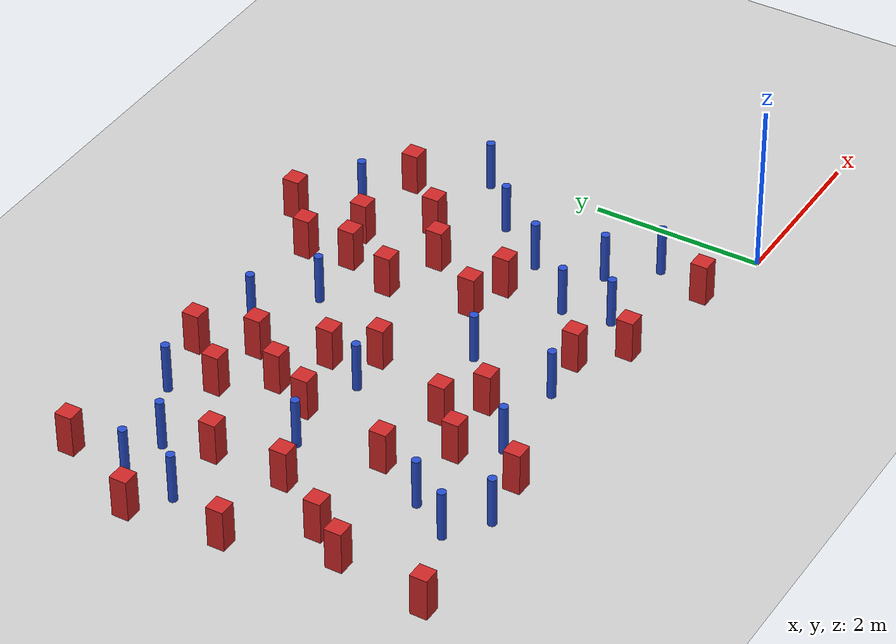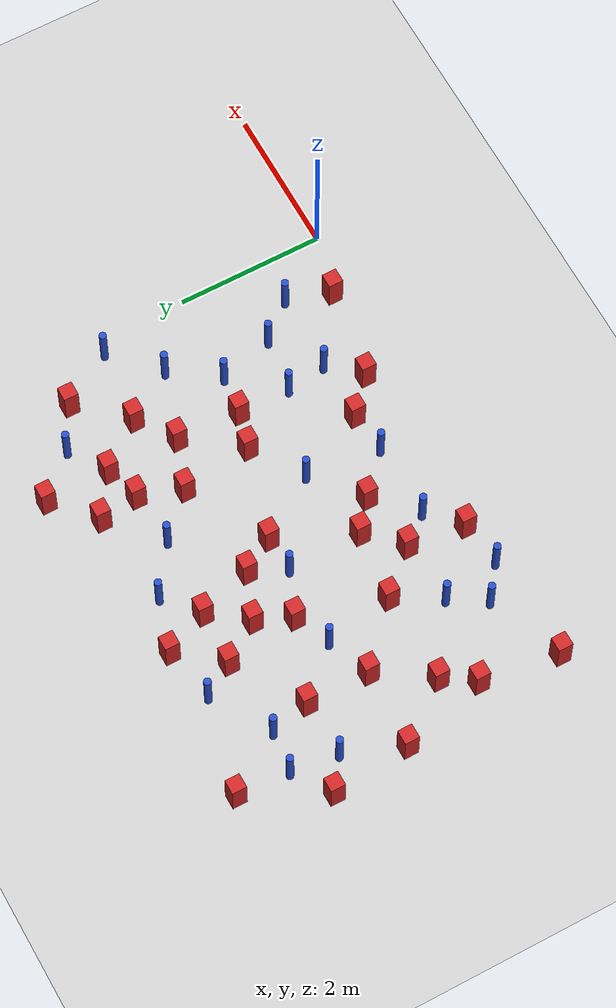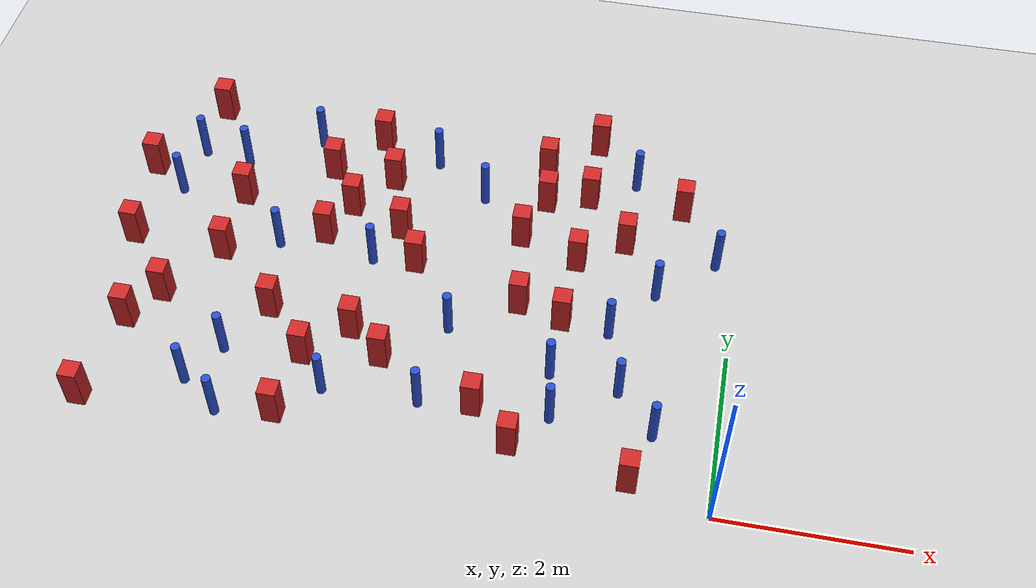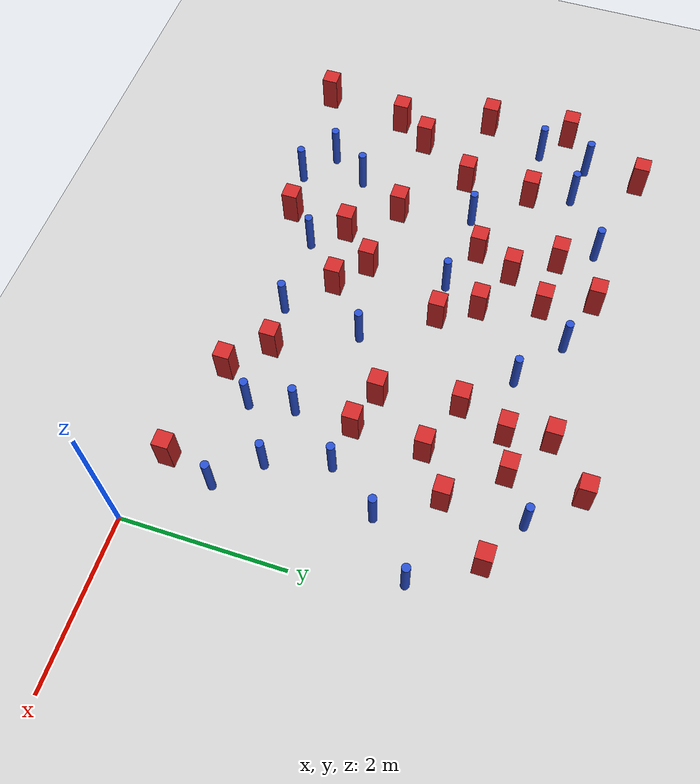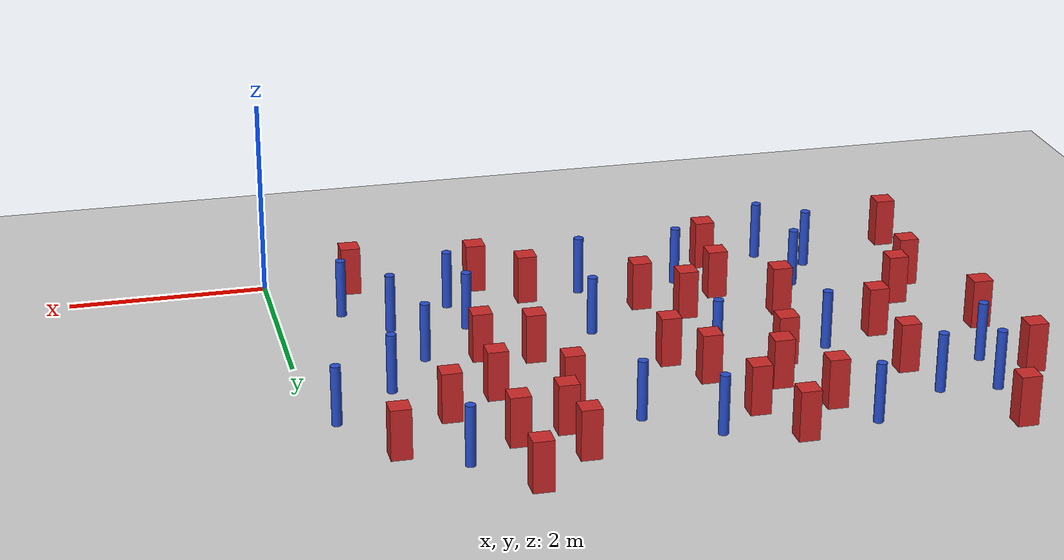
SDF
<sdf version="1.6">
 <world name="default">
  <model name="ground_plane">
   <static>1</static>
   <link name="link">
    <collision name="collision">
     <geometry><plane><normal>0 0 1</normal><size>100 100</size></plane></geometry>
     <surface><friction><ode><mu>100</mu><mu2>50</mu2></ode></friction></surface>
    </collision>
    <visual name="visual">
     <cast_shadows>0</cast_shadows>
     <geometry><plane><normal>0 0 1</normal><size>100 100</size></plane></geometry>
     <material>
      <ambient>1.0 1.0 1.0 1.0</ambient>
      <diffuse>0.8 0.8 0.8 1.0</diffuse>
      <specular>0.01 0.01 0.01 1.000000</specular>
     </material>
    </visual>
   </link>
  </model>
  <model name="pole_obstacle3">
   <static>true</static>
   <pose>-1.08976365134 1.31556032206 2.88873142074e-08 -9.90536689672e-09 4.60219948993e-07 -1.20965994959e-07</pose>
   <link name="link">
    <pose>0 0 0.3 0 -0 0</pose>
    <inertial>
     <mass>1</mass>
     <inertia><ixx>0.145833</ixx><ixy>0</ixy><ixz>0</ixz><iyy>0.145833</iyy><iyz>0</iyz><izz>0.125</izz></inertia>
    </inertial>
    <collision name="collision">
     <geometry><cylinder><radius>0.05</radius><length>.6</length></cylinder></geometry>
    </collision>
    <visual name="visual">
     <geometry><cylinder><radius>0.05</radius><length>.6</length></cylinder></geometry>
     <material>
      <script><name>Gazebo/Blue</name><uri>file://media/materials/scripts/gazebo.material</uri></script>
     </material>
    </visual>
   </link>
  </model>
  <model name="square_post_obstacle5">
   <static>true</static>
   <pose>-2.57601533757 0.859786683411 8.22691968438e-08 7.2212513382e-06 -7.54495500217e-07 2.29674213826e-05</pose>
   <link name="link">
    <pose>0 0 0.25 0 -0 0</pose>
    <inertial>
     <mass>100</mass>
     <inertia>
      <ixx>0.166667</ixx>
      <ixy>0</ixy>
      <ixz>0</ixz>
      <iyy>0.166667</iyy>
      <iyz>0</iyz>
      <izz>0.166667</izz>
     </inertia>
    </inertial>
    <collision name="collision"><geometry><box><size>.2 .2 .5</size></box></geometry></collision>
    <visual name="visual">
     <geometry><box><size>.2 .2 .5</size></box></geometry>
     <material>
      <script><name>Gazebo/Red</name><uri>file://media/materials/scripts/gazebo.material</uri></script>
     </material>
    </visual>
   </link>
  </model>
  <model name="pole_obstacle4">
   <static>true</static>
   <pose>-3.15151144274 0.806409294875 2.88873142074e-08 -9.90536689285e-09 4.60219949002e-07 -1.20965994953e-07</pose>
   <link name="link">
    <pose>0 0 0.3 0 -0 0</pose>
    <inertial>
     <mass>1</mass>
     <inertia><ixx>0.145833</ixx><ixy>0</ixy><ixz>0</ixz><iyy>0.145833</iyy><iyz>0</iyz><izz>0.125</izz></inertia>
    </inertial>
    <collision name="collision">
     <geometry><cylinder><radius>0.05</radius><length>.6</length></cylinder></geometry>
    </collision>
    <visual name="visual">
     <geometry><cylinder><radius>0.05</radius><length>.6</length></cylinder></geometry>
     <material>
      <script><name>Gazebo/Blue</name><uri>file://media/materials/scripts/gazebo.material</uri></script>
     </material>
    </visual>
   </link>
  </model>
  <model name="pole_obstacle6">
   <static>true</static>
   <pose>-5.11219012567 4.33190283015 2.88873142074e-08 -9.90536690842e-09 4.60219948965e-07 -1.20965994976e-07</pose>
   <link name="link">
    <pose>0 0 0.3 0 -0 0</pose>
    <inertial>
     <mass>1</mass>
     <inertia><ixx>0.145833</ixx><ixy>0</ixy><ixz>0</ixz><iyy>0.145833</iyy><iyz>0</iyz><izz>0.125</izz></inertia>
    </inertial>
    <collision name="collision">
     <geometry><cylinder><radius>0.05</radius><length>.6</length></cylinder></geometry>
    </collision>
    <visual name="visual">
     <geometry><cylinder><radius>0.05</radius><length>.6</length></cylinder></geometry>
     <material>
      <script><name>Gazebo/Blue</name><uri>file://media/materials/scripts/gazebo.material</uri></script>
     </material>
    </visual>
   </link>
  </model>
  <model name="square_post_obstacle11">
   <static>true</static>
   <pose>-4.8404946907 3.89938742409 8.22691968438e-08 7.2212513382e-06 -7.54495500217e-07 2.29674213826e-05</pose>
   <link name="link">
    <pose>0 0 0.25 0 -0 0</pose>
    <inertial>
     <mass>100</mass>
     <inertia>
      <ixx>0.166667</ixx>
      <ixy>0</ixy>
      <ixz>0</ixz>
      <iyy>0.166667</iyy>
      <iyz>0</iyz>
      <izz>0.166667</izz>
     </inertia>
    </inertial>
    <collision name="collision"><geometry><box><size>.2 .2 .5</size></box></geometry></collision>
    <visual name="visual">
     <geometry><box><size>.2 .2 .5</size></box></geometry>
     <material>
      <script><name>Gazebo/Red</name><uri>file://media/materials/scripts/gazebo.material</uri></script>
     </material>
    </visual>
   </link>
  </model>
  <model name="square_post_obstacle13">
   <static>true</static>
   <pose>-1.27762852433 3.37003128828 8.22691968438e-08 7.2212513382e-06 -7.54495500217e-07 2.29674213826e-05</pose>
   <link name="link">
    <pose>0 0 0.25 0 -0 0</pose>
    <inertial>
     <mass>100</mass>
     <inertia>
      <ixx>0.166667</ixx>
      <ixy>0</ixy>
      <ixz>0</ixz>
      <iyy>0.166667</iyy>
      <iyz>0</iyz>
      <izz>0.166667</izz>
     </inertia>
    </inertial>
    <collision name="collision"><geometry><box><size>.2 .2 .5</size></box></geometry></collision>
    <visual name="visual">
     <geometry><box><size>.2 .2 .5</size></box></geometry>
     <material>
      <script><name>Gazebo/Red</name><uri>file://media/materials/scripts/gazebo.material</uri></script>
     </material>
    </visual>
   </link>
  </model>
  <model name="square_post_obstacle22">
   <static>true</static>
   <pose>-0.85530971246 0.242384981534 8.22691968438e-08 7.2212513382e-06 -7.54495500217e-07 2.29674213826e-05</pose>
   <link name="link">
    <pose>0 0 0.25 0 -0 0</pose>
    <inertial>
     <mass>100</mass>
     <inertia>
      <ixx>0.166667</ixx>
      <ixy>0</ixy>
      <ixz>0</ixz>
      <iyy>0.166667</iyy>
      <iyz>0</iyz>
      <izz>0.166667</izz>
     </inertia>
    </inertial>
    <collision name="collision"><geometry><box><size>.2 .2 .5</size></box></geometry></collision>
    <visual name="visual">
     <geometry><box><size>.2 .2 .5</size></box></geometry>
     <material>
      <script><name>Gazebo/Red</name><uri>file://media/materials/scripts/gazebo.material</uri></script>
     </material>
    </visual>
   </link>
  </model>
  <model name="square_post_obstacle28">
   <static>true</static>
   <pose>-3.85327002923 3.11422200383 8.22691968438e-08 7.2212513382e-06 -7.54495500217e-07 2.29674213826e-05</pose>
   <link name="link">
    <pose>0 0 0.25 0 -0 0</pose>
    <inertial>
     <mass>100</mass>
     <inertia>
      <ixx>0.166667</ixx>
      <ixy>0</ixy>
      <ixz>0</ixz>
      <iyy>0.166667</iyy>
      <iyz>0</iyz>
      <izz>0.166667</izz>
     </inertia>
    </inertial>
    <collision name="collision"><geometry><box><size>.2 .2 .5</size></box></geometry></collision>
    <visual name="visual">
     <geometry><box><size>.2 .2 .5</size></box></geometry>
     <material>
      <script><name>Gazebo/Red</name><uri>file://media/materials/scripts/gazebo.material</uri></script>
     </material>
    </visual>
   </link>
  </model>
  <model name="square_post_obstacle30">
   <static>true</static>
   <pose>-2.3392157579 4.38237892554 8.22691968438e-08 7.2212513382e-06 -7.54495500217e-07 2.29674213826e-05</pose>
   <link name="link">
    <pose>0 0 0.25 0 -0 0</pose>
    <inertial>
     <mass>100</mass>
     <inertia>
      <ixx>0.166667</ixx>
      <ixy>0</ixy>
      <ixz>0</ixz>
      <iyy>0.166667</iyy>
      <iyz>0</iyz>
      <izz>0.166667</izz>
     </inertia>
    </inertial>
    <collision name="collision"><geometry><box><size>.2 .2 .5</size></box></geometry></collision>
    <visual name="visual">
     <geometry><box><size>.2 .2 .5</size></box></geometry>
     <material>
      <script><name>Gazebo/Red</name><uri>file://media/materials/scripts/gazebo.material</uri></script>
     </material>
    </visual>
   </link>
  </model>
  <model name="square_post_obstacle35">
   <static>true</static>
   <pose>-4.60704006461 0.393187467713 8.22691968438e-08 7.22125133819e-06 -7.54495500217e-07 2.29674213826e-05</pose>
   <link name="link">
    <pose>0 0 0.25 0 -0 0</pose>
    <inertial>
     <mass>100</mass>
     <inertia>
      <ixx>0.166667</ixx>
      <ixy>0</ixy>
      <ixz>0</ixz>
      <iyy>0.166667</iyy>
      <iyz>0</iyz>
      <izz>0.166667</izz>
     </inertia>
    </inertial>
    <collision name="collision"><geometry><box><size>.2 .2 .5</size></box></geometry></collision>
    <visual name="visual">
     <geometry><box><size>.2 .2 .5</size></box></geometry>
     <material>
      <script><name>Gazebo/Red</name><uri>file://media/materials/scripts/gazebo.material</uri></script>
     </material>
    </visual>
   </link>
  </model>
  <model name="square_post_obstacle36">
   <static>true</static>
   <pose>-5.7768450502 3.30718162013 8.22691968438e-08 7.2212513382e-06 -7.54495500217e-07 2.29674213826e-05</pose>
   <link name="link">
    <pose>0 0 0.25 0 -0 0</pose>
    <inertial>
     <mass>100</mass>
     <inertia>
      <ixx>0.166667</ixx>
      <ixy>0</ixy>
      <ixz>0</ixz>
      <iyy>0.166667</iyy>
      <iyz>0</iyz>
      <izz>0.166667</izz>
     </inertia>
    </inertial>
    <collision name="collision"><geometry><box><size>.2 .2 .5</size></box></geometry></collision>
    <visual name="visual">
     <geometry><box><size>.2 .2 .5</size></box></geometry>
     <material>
      <script><name>Gazebo/Red</name><uri>file://media/materials/scripts/gazebo.material</uri></script>
     </material>
    </visual>
   </link>
  </model>
  <model name="pole_obstacle41">
   <static>true</static>
   <pose>-3.03364688994 1.82328135514 2.88873142074e-08 -9.90536689395e-09 4.60219949e-07 -1.20965994953e-07</pose>
   <link name="link">
    <pose>0 0 0.3 0 -0 0</pose>
    <inertial>
     <mass>1</mass>
     <inertia><ixx>0.145833</ixx><ixy>0</ixy><ixz>0</ixz><iyy>0.145833</iyy><iyz>0</iyz><izz>0.125</izz></inertia>
    </inertial>
    <collision name="collision">
     <geometry><cylinder><radius>0.05</radius><length>.6</length></cylinder></geometry>
    </collision>
    <visual name="visual">
     <geometry><cylinder><radius>0.05</radius><length>.6</length></cylinder></geometry>
     <material>
      <script><name>Gazebo/Blue</name><uri>file://media/materials/scripts/gazebo.material</uri></script>
     </material>
    </visual>
   </link>
  </model>
  <model name="pole_obstacle42">
   <static>true</static>
   <pose>-1.84109518254 1.42156812608 2.88873142074e-08 -9.90536689672e-09 4.60219948993e-07 -1.20965994959e-07</pose>
   <link name="link">
    <pose>0 0 0.3 0 -0 0</pose>
    <inertial>
     <mass>1</mass>
     <inertia><ixx>0.145833</ixx><ixy>0</ixy><ixz>0</ixz><iyy>0.145833</iyy><iyz>0</iyz><izz>0.125</izz></inertia>
    </inertial>
    <collision name="collision">
     <geometry><cylinder><radius>0.05</radius><length>.6</length></cylinder></geometry>
    </collision>
    <visual name="visual">
     <geometry><cylinder><radius>0.05</radius><length>.6</length></cylinder></geometry>
     <material>
      <script><name>Gazebo/Blue</name><uri>file://media/materials/scripts/gazebo.material</uri></script>
     </material>
    </visual>
   </link>
  </model>
  <model name="square_post_obstacle42">
   <static>true</static>
   <pose>-3.58215494016 2.65585285157 8.22691968438e-08 7.2212513382e-06 -7.54495500217e-07 2.29674213826e-05</pose>
   <link name="link">
    <pose>0 0 0.25 0 -0 0</pose>
    <inertial>
     <mass>100</mass>
     <inertia>
      <ixx>0.166667</ixx>
      <ixy>0</ixy>
      <ixz>0</ixz>
      <iyy>0.166667</iyy>
      <iyz>0</iyz>
      <izz>0.166667</izz>
     </inertia>
    </inertial>
    <collision name="collision"><geometry><box><size>.2 .2 .5</size></box></geometry></collision>
    <visual name="visual">
     <geometry><box><size>.2 .2 .5</size></box></geometry>
     <material>
      <script><name>Gazebo/Red</name><uri>file://media/materials/scripts/gazebo.material</uri></script>
     </material>
    </visual>
   </link>
  </model>
  <model name="square_post_obstacle51">
   <static>true</static>
   <pose>-6.53914932345 1.30629226594 8.22691968438e-08 7.2212513382e-06 -7.54495500217e-07 2.29674213826e-05</pose>
   <link name="link">
    <pose>0 0 0.25 0 -0 0</pose>
    <inertial>
     <mass>100</mass>
     <inertia>
      <ixx>0.166667</ixx>
      <ixy>0</ixy>
      <ixz>0</ixz>
      <iyy>0.166667</iyy>
      <iyz>0</iyz>
      <izz>0.166667</izz>
     </inertia>
    </inertial>
    <collision name="collision"><geometry><box><size>.2 .2 .5</size></box></geometry></collision>
    <visual name="visual">
     <geometry><box><size>.2 .2 .5</size></box></geometry>
     <material>
      <script><name>Gazebo/Red</name><uri>file://media/materials/scripts/gazebo.material</uri></script>
     </material>
    </visual>
   </link>
  </model>
  <model name="square_post_obstacle63">
   <static>true</static>
   <pose>-1.79017261181 3.01422830606 8.22691968438e-08 7.2212513382e-06 -7.54495500217e-07 2.29674213826e-05</pose>
   <link name="link">
    <pose>0 0 0.25 0 -0 0</pose>
    <inertial>
     <mass>100</mass>
     <inertia>
      <ixx>0.166667</ixx>
      <ixy>0</ixy>
      <ixz>0</ixz>
      <iyy>0.166667</iyy>
      <iyz>0</iyz>
      <izz>0.166667</izz>
     </inertia>
    </inertial>
    <collision name="collision"><geometry><box><size>.2 .2 .5</size></box></geometry></collision>
    <visual name="visual">
     <geometry><box><size>.2 .2 .5</size></box></geometry>
     <material>
      <script><name>Gazebo/Red</name><uri>file://media/materials/scripts/gazebo.material</uri></script>
     </material>
    </visual>
   </link>
  </model>
  <model name="pole_obstacle74">
   <static>true</static>
   <pose>-6.55440013574 3.28089470537 2.88873142074e-08 -9.90536690245e-09 4.6021994898e-07 -1.20965994966e-07</pose>
   <link name="link">
    <pose>0 0 0.3 0 -0 0</pose>
    <inertial>
     <mass>1</mass>
     <inertia><ixx>0.145833</ixx><ixy>0</ixy><ixz>0</ixz><iyy>0.145833</iyy><iyz>0</iyz><izz>0.125</izz></inertia>
    </inertial>
    <collision name="collision">
     <geometry><cylinder><radius>0.05</radius><length>.6</length></cylinder></geometry>
    </collision>
    <visual name="visual">
     <geometry><cylinder><radius>0.05</radius><length>.6</length></cylinder></geometry>
     <material>
      <script><name>Gazebo/Blue</name><uri>file://media/materials/scripts/gazebo.material</uri></script>
     </material>
    </visual>
   </link>
  </model>
  <model name="pole_obstacle84">
   <static>true</static>
   <pose>-0.851962237992 2.6984156431 2.88873142074e-08 -9.90536689636e-09 4.60219948994e-07 -1.20965994958e-07</pose>
   <link name="link">
    <pose>0 0 0.3 0 -0 0</pose>
    <inertial>
     <mass>1</mass>
     <inertia><ixx>0.145833</ixx><ixy>0</ixy><ixz>0</ixz><iyy>0.145833</iyy><iyz>0</iyz><izz>0.125</izz></inertia>
    </inertial>
    <collision name="collision">
     <geometry><cylinder><radius>0.05</radius><length>.6</length></cylinder></geometry>
    </collision>
    <visual name="visual">
     <geometry><cylinder><radius>0.05</radius><length>.6</length></cylinder></geometry>
     <material>
      <script><name>Gazebo/Blue</name><uri>file://media/materials/scripts/gazebo.material</uri></script>
     </material>
    </visual>
   </link>
  </model>
  <model name="pole_obstacle94">
   <static>true</static>
   <pose>-3.64276049125 4.24428962149 2.88873142074e-08 -9.90536692062e-09 4.60219948937e-07 -1.20965994985e-07</pose>
   <link name="link">
    <pose>0 0 0.3 0 -0 0</pose>
    <inertial>
     <mass>1</mass>
     <inertia><ixx>0.145833</ixx><ixy>0</ixy><ixz>0</ixz><iyy>0.145833</iyy><iyz>0</iyz><izz>0.125</izz></inertia>
    </inertial>
    <collision name="collision">
     <geometry><cylinder><radius>0.05</radius><length>.6</length></cylinder></geometry>
    </collision>
    <visual name="visual">
     <geometry><cylinder><radius>0.05</radius><length>.6</length></cylinder></geometry>
     <material>
      <script><name>Gazebo/Blue</name><uri>file://media/materials/scripts/gazebo.material</uri></script>
     </material>
    </visual>
   </link>
  </model>
  <model name="pole_obstacle100">
   <static>true</static>
   <pose>-1.26637371874 4.32290611118 2.88873142074e-08 -9.90536689852e-09 4.60219948989e-07 -1.2096599496e-07</pose>
   <link name="link">
    <pose>0 0 0.3 0 -0 0</pose>
    <inertial>
     <mass>1</mass>
     <inertia><ixx>0.145833</ixx><ixy>0</ixy><ixz>0</ixz><iyy>0.145833</iyy><iyz>0</iyz><izz>0.125</izz></inertia>
    </inertial>
    <collision name="collision">
     <geometry><cylinder><radius>0.05</radius><length>.6</length></cylinder></geometry>
    </collision>
    <visual name="visual">
     <geometry><cylinder><radius>0.05</radius><length>.6</length></cylinder></geometry>
     <material>
      <script><name>Gazebo/Blue</name><uri>file://media/materials/scripts/gazebo.material</uri></script>
     </material>
    </visual>
   </link>
  </model>
  <model name="pole_obstacle101">
   <static>true</static>
   <pose>-4.08183028044 2.63110811047 2.88873142074e-08 -9.90536690245e-09 4.6021994898e-07 -1.20965994966e-07</pose>
   <link name="link">
    <pose>0 0 0.3 0 -0 0</pose>
    <inertial>
     <mass>1</mass>
     <inertia><ixx>0.145833</ixx><ixy>0</ixy><ixz>0</ixz><iyy>0.145833</iyy><iyz>0</iyz><izz>0.125</izz></inertia>
    </inertial>
    <collision name="collision">
     <geometry><cylinder><radius>0.05</radius><length>.6</length></cylinder></geometry>
    </collision>
    <visual name="visual">
     <geometry><cylinder><radius>0.05</radius><length>.6</length></cylinder></geometry>
     <material>
      <script><name>Gazebo/Blue</name><uri>file://media/materials/scripts/gazebo.material</uri></script>
     </material>
    </visual>
   </link>
  </model>
  <model name="square_post_obstacle93">
   <static>true</static>
   <pose>-2.26442221289 3.84824981687 8.22691968438e-08 7.2212513382e-06 -7.54495500217e-07 2.29674213826e-05</pose>
   <link name="link">
    <pose>0 0 0.25 0 -0 0</pose>
    <inertial>
     <mass>100</mass>
     <inertia>
      <ixx>0.166667</ixx>
      <ixy>0</ixy>
      <ixz>0</ixz>
      <iyy>0.166667</iyy>
      <iyz>0</iyz>
      <izz>0.166667</izz>
     </inertia>
    </inertial>
    <collision name="collision"><geometry><box><size>.2 .2 .5</size></box></geometry></collision>
    <visual name="visual">
     <geometry><box><size>.2 .2 .5</size></box></geometry>
     <material>
      <script><name>Gazebo/Red</name><uri>file://media/materials/scripts/gazebo.material</uri></script>
     </material>
    </visual>
   </link>
  </model>
  <model name="square_post_obstacle96">
   <static>true</static>
   <pose>-4.48257636819 3.37089320578 8.22691968438e-08 7.2212513382e-06 -7.54495500217e-07 2.29674213826e-05</pose>
   <link name="link">
    <pose>0 0 0.25 0 -0 0</pose>
    <inertial>
     <mass>100</mass>
     <inertia>
      <ixx>0.166667</ixx>
      <ixy>0</ixy>
      <ixz>0</ixz>
      <iyy>0.166667</iyy>
      <iyz>0</iyz>
      <izz>0.166667</izz>
     </inertia>
    </inertial>
    <collision name="collision"><geometry><box><size>.2 .2 .5</size></box></geometry></collision>
    <visual name="visual">
     <geometry><box><size>.2 .2 .5</size></box></geometry>
     <material>
      <script><name>Gazebo/Red</name><uri>file://media/materials/scripts/gazebo.material</uri></script>
     </material>
    </visual>
   </link>
  </model>
  <model name="pole_obstacle109">
   <static>true</static>
   <pose>-2.99882161013 3.78717765915 2.88873142074e-08 -9.90536690232e-09 4.6021994898e-07 -1.20965994968e-07</pose>
   <link name="link">
    <pose>0 0 0.3 0 -0 0</pose>
    <inertial>
     <mass>1</mass>
     <inertia><ixx>0.145833</ixx><ixy>0</ixy><ixz>0</ixz><iyy>0.145833</iyy><iyz>0</iyz><izz>0.125</izz></inertia>
    </inertial>
    <collision name="collision">
     <geometry><cylinder><radius>0.05</radius><length>.6</length></cylinder></geometry>
    </collision>
    <visual name="visual">
     <geometry><cylinder><radius>0.05</radius><length>.6</length></cylinder></geometry>
     <material>
      <script><name>Gazebo/Blue</name><uri>file://media/materials/scripts/gazebo.material</uri></script>
     </material>
    </visual>
   </link>
  </model>
  <model name="pole_obstacle110">
   <static>true</static>
   <pose>-0.234288007317 3.25946235455 2.88873142074e-08 -9.90536692547e-09 4.60219948925e-07 -1.2096599499e-07</pose>
   <link name="link">
    <pose>0 0 0.3 0 -0 0</pose>
    <inertial>
     <mass>1</mass>
     <inertia><ixx>0.145833</ixx><ixy>0</ixy><ixz>0</ixz><iyy>0.145833</iyy><iyz>0</iyz><izz>0.125</izz></inertia>
    </inertial>
    <collision name="collision">
     <geometry><cylinder><radius>0.05</radius><length>.6</length></cylinder></geometry>
    </collision>
    <visual name="visual">
     <geometry><cylinder><radius>0.05</radius><length>.6</length></cylinder></geometry>
     <material>
      <script><name>Gazebo/Blue</name><uri>file://media/materials/scripts/gazebo.material</uri></script>
     </material>
    </visual>
   </link>
  </model>
  <model name="pole_obstacle112">
   <static>true</static>
   <pose>-1.29592752126 2.07177950542 2.88873142074e-08 -9.90536689791e-09 4.6021994899e-07 -1.20965994959e-07</pose>
   <link name="link">
    <pose>0 0 0.3 0 -0 0</pose>
    <inertial>
     <mass>1</mass>
     <inertia><ixx>0.145833</ixx><ixy>0</ixy><ixz>0</ixz><iyy>0.145833</iyy><iyz>0</iyz><izz>0.125</izz></inertia>
    </inertial>
    <collision name="collision">
     <geometry><cylinder><radius>0.05</radius><length>.6</length></cylinder></geometry>
    </collision>
    <visual name="visual">
     <geometry><cylinder><radius>0.05</radius><length>.6</length></cylinder></geometry>
     <material>
      <script><name>Gazebo/Blue</name><uri>file://media/materials/scripts/gazebo.material</uri></script>
     </material>
    </visual>
   </link>
  </model>
  <model name="pole_obstacle116">
   <static>true</static>
   <pose>-5.1888675097 2.67297872029 2.88873142074e-08 -9.90536690245e-09 4.6021994898e-07 -1.20965994966e-07</pose>
   <link name="link">
    <pose>0 0 0.3 0 -0 0</pose>
    <inertial>
     <mass>1</mass>
     <inertia><ixx>0.145833</ixx><ixy>0</ixy><ixz>0</ixz><iyy>0.145833</iyy><iyz>0</iyz><izz>0.125</izz></inertia>
    </inertial>
    <collision name="collision">
     <geometry><cylinder><radius>0.05</radius><length>.6</length></cylinder></geometry>
    </collision>
    <visual name="visual">
     <geometry><cylinder><radius>0.05</radius><length>.6</length></cylinder></geometry>
     <material>
      <script><name>Gazebo/Blue</name><uri>file://media/materials/scripts/gazebo.material</uri></script>
     </material>
    </visual>
   </link>
  </model>
  <model name="square_post_obstacle103">
   <static>true</static>
   <pose>-6.68981124218 0.228527592101 8.22691968438e-08 7.2212513382e-06 -7.54495500217e-07 2.29674213826e-05</pose>
   <link name="link">
    <pose>0 0 0.25 0 -0 0</pose>
    <inertial>
     <mass>100</mass>
     <inertia>
      <ixx>0.166667</ixx>
      <ixy>0</ixy>
      <ixz>0</ixz>
      <iyy>0.166667</iyy>
      <iyz>0</iyz>
      <izz>0.166667</izz>
     </inertia>
    </inertial>
    <collision name="collision"><geometry><box><size>.2 .2 .5</size></box></geometry></collision>
    <visual name="visual">
     <geometry><box><size>.2 .2 .5</size></box></geometry>
     <material>
      <script><name>Gazebo/Red</name><uri>file://media/materials/scripts/gazebo.material</uri></script>
     </material>
    </visual>
   </link>
  </model>
  <model name="square_post_obstacle106">
   <static>true</static>
   <pose>-6.26282633879 1.7269047847 8.22691968438e-08 7.2212513382e-06 -7.54495500217e-07 2.29674213826e-05</pose>
   <link name="link">
    <pose>0 0 0.25 0 -0 0</pose>
    <inertial>
     <mass>100</mass>
     <inertia>
      <ixx>0.166667</ixx>
      <ixy>0</ixy>
      <ixz>0</ixz>
      <iyy>0.166667</iyy>
      <iyz>0</iyz>
      <izz>0.166667</izz>
     </inertia>
    </inertial>
    <collision name="collision"><geometry><box><size>.2 .2 .5</size></box></geometry></collision>
    <visual name="visual">
     <geometry><box><size>.2 .2 .5</size></box></geometry>
     <material>
      <script><name>Gazebo/Red</name><uri>file://media/materials/scripts/gazebo.material</uri></script>
     </material>
    </visual>
   </link>
  </model>
  <model name="square_post_obstacle107">
   <static>true</static>
   <pose>-6.85701660653 2.49127304261 8.22691968438e-08 7.2212513382e-06 -7.54495500217e-07 2.29674213826e-05</pose>
   <link name="link">
    <pose>0 0 0.25 0 -0 0</pose>
    <inertial>
     <mass>100</mass>
     <inertia>
      <ixx>0.166667</ixx>
      <ixy>0</ixy>
      <ixz>0</ixz>
      <iyy>0.166667</iyy>
      <iyz>0</iyz>
      <izz>0.166667</izz>
     </inertia>
    </inertial>
    <collision name="collision"><geometry><box><size>.2 .2 .5</size></box></geometry></collision>
    <visual name="visual">
     <geometry><box><size>.2 .2 .5</size></box></geometry>
     <material>
      <script><name>Gazebo/Red</name><uri>file://media/materials/scripts/gazebo.material</uri></script>
     </material>
    </visual>
   </link>
  </model>
  <model name="square_post_obstacle109">
   <static>true</static>
   <pose>-1.77952450516 3.99247732106 8.22691968438e-08 7.2212513382e-06 -7.54495500217e-07 2.29674213826e-05</pose>
   <link name="link">
    <pose>0 0 0.25 0 -0 0</pose>
    <inertial>
     <mass>100</mass>
     <inertia>
      <ixx>0.166667</ixx>
      <ixy>0</ixy>
      <ixz>0</ixz>
      <iyy>0.166667</iyy>
      <iyz>0</iyz>
      <izz>0.166667</izz>
     </inertia>
    </inertial>
    <collision name="collision"><geometry><box><size>.2 .2 .5</size></box></geometry></collision>
    <visual name="visual">
     <geometry><box><size>.2 .2 .5</size></box></geometry>
     <material>
      <script><name>Gazebo/Red</name><uri>file://media/materials/scripts/gazebo.material</uri></script>
     </material>
    </visual>
   </link>
  </model>
  <model name="pole_obstacle128">
   <static>true</static>
   <pose>-5.91281349555 3.8527570961 2.88873142074e-08 -9.90536690245e-09 4.6021994898e-07 -1.20965994966e-07</pose>
   <link name="link">
    <pose>0 0 0.3 0 -0 0</pose>
    <inertial>
     <mass>1</mass>
     <inertia><ixx>0.145833</ixx><ixy>0</ixy><ixz>0</ixz><iyy>0.145833</iyy><iyz>0</iyz><izz>0.125</izz></inertia>
    </inertial>
    <collision name="collision">
     <geometry><cylinder><radius>0.05</radius><length>.6</length></cylinder></geometry>
    </collision>
    <visual name="visual">
     <geometry><cylinder><radius>0.05</radius><length>.6</length></cylinder></geometry>
     <material>
      <script><name>Gazebo/Blue</name><uri>file://media/materials/scripts/gazebo.material</uri></script>
     </material>
    </visual>
   </link>
  </model>
  <model name="pole_obstacle133">
   <static>true</static>
   <pose>-4.19259812666 0.783050311765 2.88873142074e-08 -9.90536689837e-09 4.60219948989e-07 -1.2096599496e-07</pose>
   <link name="link">
    <pose>0 0 0.3 0 -0 0</pose>
    <inertial>
     <mass>1</mass>
     <inertia><ixx>0.145833</ixx><ixy>0</ixy><ixz>0</ixz><iyy>0.145833</iyy><iyz>0</iyz><izz>0.125</izz></inertia>
    </inertial>
    <collision name="collision">
     <geometry><cylinder><radius>0.05</radius><length>.6</length></cylinder></geometry>
    </collision>
    <visual name="visual">
     <geometry><cylinder><radius>0.05</radius><length>.6</length></cylinder></geometry>
     <material>
      <script><name>Gazebo/Blue</name><uri>file://media/materials/scripts/gazebo.material</uri></script>
     </material>
    </visual>
   </link>
  </model>
  <model name="square_post_obstacle120">
   <static>true</static>
   <pose>-4.50836434524 1.17616989515 8.22691968438e-08 7.2212513382e-06 -7.54495500217e-07 2.29674213826e-05</pose>
   <link name="link">
    <pose>0 0 0.25 0 -0 0</pose>
    <inertial>
     <mass>100</mass>
     <inertia>
      <ixx>0.166667</ixx>
      <ixy>0</ixy>
      <ixz>0</ixz>
      <iyy>0.166667</iyy>
      <iyz>0</iyz>
      <izz>0.166667</izz>
     </inertia>
    </inertial>
    <collision name="collision"><geometry><box><size>.2 .2 .5</size></box></geometry></collision>
    <visual name="visual">
     <geometry><box><size>.2 .2 .5</size></box></geometry>
     <material>
      <script><name>Gazebo/Red</name><uri>file://media/materials/scripts/gazebo.material</uri></script>
     </material>
    </visual>
   </link>
  </model>
  <model name="square_post_obstacle127">
   <static>true</static>
   <pose>-6.96439937522 3.57836497117 8.22691968438e-08 7.2212513382e-06 -7.54495500217e-07 2.29674213826e-05</pose>
   <link name="link">
    <pose>0 0 0.25 0 -0 0</pose>
    <inertial>
     <mass>100</mass>
     <inertia>
      <ixx>0.166667</ixx>
      <ixy>0</ixy>
      <ixz>0</ixz>
      <iyy>0.166667</iyy>
      <iyz>0</iyz>
      <izz>0.166667</izz>
     </inertia>
    </inertial>
    <collision name="collision"><geometry><box><size>.2 .2 .5</size></box></geometry></collision>
    <visual name="visual">
     <geometry><box><size>.2 .2 .5</size></box></geometry>
     <material>
      <script><name>Gazebo/Red</name><uri>file://media/materials/scripts/gazebo.material</uri></script>
     </material>
    </visual>
   </link>
  </model>
  <model name="square_post_obstacle138">
   <static>true</static>
   <pose>-4.35887354306 4.47136112576 8.22691968438e-08 7.22125133819e-06 -7.54495500217e-07 2.29674213826e-05</pose>
   <link name="link">
    <pose>0 0 0.25 0 -0 0</pose>
    <inertial>
     <mass>100</mass>
     <inertia>
      <ixx>0.166667</ixx>
      <ixy>0</ixy>
      <ixz>0</ixz>
      <iyy>0.166667</iyy>
      <iyz>0</iyz>
      <izz>0.166667</izz>
     </inertia>
    </inertial>
    <collision name="collision"><geometry><box><size>.2 .2 .5</size></box></geometry></collision>
    <visual name="visual">
     <geometry><box><size>.2 .2 .5</size></box></geometry>
     <material>
      <script><name>Gazebo/Red</name><uri>file://media/materials/scripts/gazebo.material</uri></script>
     </material>
    </visual>
   </link>
  </model>
  <model name="pole_obstacle151">
   <static>true</static>
   <pose>-5.22667336541 0.310133325727 2.88873142074e-08 -9.90536689981e-09 4.60219948986e-07 -1.20965994962e-07</pose>
   <link name="link">
    <pose>0 0 0.3 0 -0 0</pose>
    <inertial>
     <mass>1</mass>
     <inertia><ixx>0.145833</ixx><ixy>0</ixy><ixz>0</ixz><iyy>0.145833</iyy><iyz>0</iyz><izz>0.125</izz></inertia>
    </inertial>
    <collision name="collision">
     <geometry><cylinder><radius>0.05</radius><length>.6</length></cylinder></geometry>
    </collision>
    <visual name="visual">
     <geometry><cylinder><radius>0.05</radius><length>.6</length></cylinder></geometry>
     <material>
      <script><name>Gazebo/Blue</name><uri>file://media/materials/scripts/gazebo.material</uri></script>
     </material>
    </visual>
   </link>
  </model>
  <model name="square_post_obstacle141">
   <static>true</static>
   <pose>-6.42051955582 4.64055327827 8.22691968438e-08 7.2212513382e-06 -7.54495500217e-07 2.29674213826e-05</pose>
   <link name="link">
    <pose>0 0 0.25 0 -0 0</pose>
    <inertial>
     <mass>100</mass>
     <inertia>
      <ixx>0.166667</ixx>
      <ixy>0</ixy>
      <ixz>0</ixz>
      <iyy>0.166667</iyy>
      <iyz>0</iyz>
      <izz>0.166667</izz>
     </inertia>
    </inertial>
    <collision name="collision"><geometry><box><size>.2 .2 .5</size></box></geometry></collision>
    <visual name="visual">
     <geometry><box><size>.2 .2 .5</size></box></geometry>
     <material>
      <script><name>Gazebo/Red</name><uri>file://media/materials/scripts/gazebo.material</uri></script>
     </material>
    </visual>
   </link>
  </model>
  <model name="square_post_obstacle146">
   <static>true</static>
   <pose>-2.33018917177 2.28346846501 8.22691968438e-08 7.2212513382e-06 -7.54495500217e-07 2.29674213826e-05</pose>
   <link name="link">
    <pose>0 0 0.25 0 -0 0</pose>
    <inertial>
     <mass>100</mass>
     <inertia>
      <ixx>0.166667</ixx>
      <ixy>0</ixy>
      <ixz>0</ixz>
      <iyy>0.166667</iyy>
      <iyz>0</iyz>
      <izz>0.166667</izz>
     </inertia>
    </inertial>
    <collision name="collision"><geometry><box><size>.2 .2 .5</size></box></geometry></collision>
    <visual name="visual">
     <geometry><box><size>.2 .2 .5</size></box></geometry>
     <material>
      <script><name>Gazebo/Red</name><uri>file://media/materials/scripts/gazebo.material</uri></script>
     </material>
    </visual>
   </link>
  </model>
  <model name="square_post_obstacle150">
   <static>true</static>
   <pose>-4.09736352684 3.86383980138 8.22691968438e-08 7.2212513382e-06 -7.54495500217e-07 2.29674213826e-05</pose>
   <link name="link">
    <pose>0 0 0.25 0 -0 0</pose>
    <inertial>
     <mass>100</mass>
     <inertia>
      <ixx>0.166667</ixx>
      <ixy>0</ixy>
      <ixz>0</ixz>
      <iyy>0.166667</iyy>
      <iyz>0</iyz>
      <izz>0.166667</izz>
     </inertia>
    </inertial>
    <collision name="collision"><geometry><box><size>.2 .2 .5</size></box></geometry></collision>
    <visual name="visual">
     <geometry><box><size>.2 .2 .5</size></box></geometry>
     <material>
      <script><name>Gazebo/Red</name><uri>file://media/materials/scripts/gazebo.material</uri></script>
     </material>
    </visual>
   </link>
  </model>
  <model name="square_post_obstacle157">
   <static>true</static>
   <pose>-4.69353604353 2.88858989935 8.22691968438e-08 7.2212513382e-06 -7.54495500217e-07 2.29674213826e-05</pose>
   <link name="link">
    <pose>0 0 0.25 0 -0 0</pose>
    <inertial>
     <mass>100</mass>
     <inertia>
      <ixx>0.166667</ixx>
      <ixy>0</ixy>
      <ixz>0</ixz>
      <iyy>0.166667</iyy>
      <iyz>0</iyz>
      <izz>0.166667</izz>
     </inertia>
    </inertial>
    <collision name="collision"><geometry><box><size>.2 .2 .5</size></box></geometry></collision>
    <visual name="visual">
     <geometry><box><size>.2 .2 .5</size></box></geometry>
     <material>
      <script><name>Gazebo/Red</name><uri>file://media/materials/scripts/gazebo.material</uri></script>
     </material>
    </visual>
   </link>
  </model>
  <model name="pole_obstacle166">
   <static>true</static>
   <pose>-0.670958627819 0.841719011818 2.88873142074e-08 -9.90536689967e-09 4.60219948986e-07 -1.20965994963e-07</pose>
   <link name="link">
    <pose>0 0 0.3 0 -0 0</pose>
    <inertial>
     <mass>1</mass>
     <inertia><ixx>0.145833</ixx><ixy>0</ixy><ixz>0</ixz><iyy>0.145833</iyy><iyz>0</iyz><izz>0.125</izz></inertia>
    </inertial>
    <collision name="collision">
     <geometry><cylinder><radius>0.05</radius><length>.6</length></cylinder></geometry>
    </collision>
    <visual name="visual">
     <geometry><cylinder><radius>0.05</radius><length>.6</length></cylinder></geometry>
     <material>
      <script><name>Gazebo/Blue</name><uri>file://media/materials/scripts/gazebo.material</uri></script>
     </material>
    </visual>
   </link>
  </model>
  <model name="square_post_obstacle160">
   <static>true</static>
   <pose>-4.06683525691 1.61027831848 8.22691968438e-08 7.2212513382e-06 -7.54495500217e-07 2.29674213826e-05</pose>
   <link name="link">
    <pose>0 0 0.25 0 -0 0</pose>
    <inertial>
     <mass>100</mass>
     <inertia>
      <ixx>0.166667</ixx>
      <ixy>0</ixy>
      <ixz>0</ixz>
      <iyy>0.166667</iyy>
      <iyz>0</iyz>
      <izz>0.166667</izz>
     </inertia>
    </inertial>
    <collision name="collision"><geometry><box><size>.2 .2 .5</size></box></geometry></collision>
    <visual name="visual">
     <geometry><box><size>.2 .2 .5</size></box></geometry>
     <material>
      <script><name>Gazebo/Red</name><uri>file://media/materials/scripts/gazebo.material</uri></script>
     </material>
    </visual>
   </link>
  </model>
  <model name="pole_obstacle170">
   <static>true</static>
   <pose>-6.47256762542 3.92407531449 2.88873142074e-08 -9.90536690245e-09 4.6021994898e-07 -1.20965994966e-07</pose>
   <link name="link">
    <pose>0 0 0.3 0 -0 0</pose>
    <inertial>
     <mass>1</mass>
     <inertia><ixx>0.145833</ixx><ixy>0</ixy><ixz>0</ixz><iyy>0.145833</iyy><iyz>0</iyz><izz>0.125</izz></inertia>
    </inertial>
    <collision name="collision">
     <geometry><cylinder><radius>0.05</radius><length>.6</length></cylinder></geometry>
    </collision>
    <visual name="visual">
     <geometry><cylinder><radius>0.05</radius><length>.6</length></cylinder></geometry>
     <material>
      <script><name>Gazebo/Blue</name><uri>file://media/materials/scripts/gazebo.material</uri></script>
     </material>
    </visual>
   </link>
  </model>
  <model name="square_post_obstacle166">
   <static>true</static>
   <pose>-2.46836956154 3.26005277389 8.22691968438e-08 7.2212513382e-06 -7.54495500217e-07 2.29674213826e-05</pose>
   <link name="link">
    <pose>0 0 0.25 0 -0 0</pose>
    <inertial>
     <mass>100</mass>
     <inertia>
      <ixx>0.166667</ixx>
      <ixy>0</ixy>
      <ixz>0</ixz>
      <iyy>0.166667</iyy>
      <iyz>0</iyz>
      <izz>0.166667</izz>
     </inertia>
    </inertial>
    <collision name="collision"><geometry><box><size>.2 .2 .5</size></box></geometry></collision>
    <visual name="visual">
     <geometry><box><size>.2 .2 .5</size></box></geometry>
     <material>
      <script><name>Gazebo/Red</name><uri>file://media/materials/scripts/gazebo.material</uri></script>
     </material>
    </visual>
   </link>
  </model>
  <model name="square_post_obstacle171">
   <static>true</static>
   <pose>-5.7807881458 2.4426640516 8.22691968438e-08 7.2212513382e-06 -7.54495500217e-07 2.29674213826e-05</pose>
   <link name="link">
    <pose>0 0 0.25 0 -0 0</pose>
    <inertial>
     <mass>100</mass>
     <inertia>
      <ixx>0.166667</ixx>
      <ixy>0</ixy>
      <ixz>0</ixz>
      <iyy>0.166667</iyy>
      <iyz>0</iyz>
      <izz>0.166667</izz>
     </inertia>
    </inertial>
    <collision name="collision"><geometry><box><size>.2 .2 .5</size></box></geometry></collision>
    <visual name="visual">
     <geometry><box><size>.2 .2 .5</size></box></geometry>
     <material>
      <script><name>Gazebo/Red</name><uri>file://media/materials/scripts/gazebo.material</uri></script>
     </material>
    </visual>
   </link>
  </model>
  <model name="pole_obstacle186">
   <static>true</static>
   <pose>-5.66351942218 0.637822759408 2.88873142074e-08 -9.90536689837e-09 4.60219948989e-07 -1.2096599496e-07</pose>
   <link name="link">
    <pose>0 0 0.3 0 -0 0</pose>
    <inertial>
     <mass>1</mass>
     <inertia><ixx>0.145833</ixx><ixy>0</ixy><ixz>0</ixz><iyy>0.145833</iyy><iyz>0</iyz><izz>0.125</izz></inertia>
    </inertial>
    <collision name="collision">
     <geometry><cylinder><radius>0.05</radius><length>.6</length></cylinder></geometry>
    </collision>
    <visual name="visual">
     <geometry><cylinder><radius>0.05</radius><length>.6</length></cylinder></geometry>
     <material>
      <script><name>Gazebo/Blue</name><uri>file://media/materials/scripts/gazebo.material</uri></script>
     </material>
    </visual>
   </link>
  </model>
  <model name="square_post_obstacle175">
   <static>true</static>
   <pose>-0.686178355304 3.99664833968 8.22691968438e-08 7.2212513382e-06 -7.54495500217e-07 2.29674213826e-05</pose>
   <link name="link">
    <pose>0 0 0.25 0 -0 0</pose>
    <inertial>
     <mass>100</mass>
     <inertia>
      <ixx>0.166667</ixx>
      <ixy>0</ixy>
      <ixz>0</ixz>
      <iyy>0.166667</iyy>
      <iyz>0</iyz>
      <izz>0.166667</izz>
     </inertia>
    </inertial>
    <collision name="collision"><geometry><box><size>.2 .2 .5</size></box></geometry></collision>
    <visual name="visual">
     <geometry><box><size>.2 .2 .5</size></box></geometry>
     <material>
      <script><name>Gazebo/Red</name><uri>file://media/materials/scripts/gazebo.material</uri></script>
     </material>
    </visual>
   </link>
  </model>
  <model name="square_post_obstacle179">
   <static>true</static>
   <pose>-1.77892512099 4.87649575961 8.22691968438e-08 7.2212513382e-06 -7.54495500217e-07 2.29674213826e-05</pose>
   <link name="link">
    <pose>0 0 0.25 0 -0 0</pose>
    <inertial>
     <mass>100</mass>
     <inertia>
      <ixx>0.166667</ixx>
      <ixy>0</ixy>
      <ixz>0</ixz>
      <iyy>0.166667</iyy>
      <iyz>0</iyz>
      <izz>0.166667</izz>
     </inertia>
    </inertial>
    <collision name="collision"><geometry><box><size>.2 .2 .5</size></box></geometry></collision>
    <visual name="visual">
     <geometry><box><size>.2 .2 .5</size></box></geometry>
     <material>
      <script><name>Gazebo/Red</name><uri>file://media/materials/scripts/gazebo.material</uri></script>
     </material>
    </visual>
   </link>
  </model>
  <model name="square_post_obstacle180">
   <static>true</static>
   <pose>-1.83034114158 2.14331979781 8.22691968438e-08 7.2212513382e-06 -7.54495500217e-07 2.29674213826e-05</pose>
   <link name="link">
    <pose>0 0 0.25 0 -0 0</pose>
    <inertial>
     <mass>100</mass>
     <inertia>
      <ixx>0.166667</ixx>
      <ixy>0</ixy>
      <ixz>0</ixz>
      <iyy>0.166667</iyy>
      <iyz>0</iyz>
      <izz>0.166667</izz>
     </inertia>
    </inertial>
    <collision name="collision"><geometry><box><size>.2 .2 .5</size></box></geometry></collision>
    <visual name="visual">
     <geometry><box><size>.2 .2 .5</size></box></geometry>
     <material>
      <script><name>Gazebo/Red</name><uri>file://media/materials/scripts/gazebo.material</uri></script>
     </material>
    </visual>
   </link>
  </model>
  <model name="square_post_obstacle188">
   <static>true</static>
   <pose>-3.67150581801 1.29231486053 8.22691968438e-08 7.22125133819e-06 -7.54495500217e-07 2.29674213826e-05</pose>
   <link name="link">
    <pose>0 0 0.25 0 -0 0</pose>
    <inertial>
     <mass>100</mass>
     <inertia>
      <ixx>0.166667</ixx>
      <ixy>0</ixy>
      <ixz>0</ixz>
      <iyy>0.166667</iyy>
      <iyz>0</iyz>
      <izz>0.166667</izz>
     </inertia>
    </inertial>
    <collision name="collision"><geometry><box><size>.2 .2 .5</size></box></geometry></collision>
    <visual name="visual">
     <geometry><box><size>.2 .2 .5</size></box></geometry>
     <material>
      <script><name>Gazebo/Red</name><uri>file://media/materials/scripts/gazebo.material</uri></script>
     </material>
    </visual>
   </link>
  </model>
  <model name="square_post_obstacle201">
   <static>true</static>
   <pose>-2.12427519518 0.455293329244 8.22691968438e-08 7.2212513382e-06 -7.54495500217e-07 2.29674213826e-05</pose>
   <link name="link">
    <pose>0 0 0.25 0 -0 0</pose>
    <inertial>
     <mass>100</mass>
     <inertia>
      <ixx>0.166667</ixx>
      <ixy>0</ixy>
      <ixz>0</ixz>
      <iyy>0.166667</iyy>
      <iyz>0</iyz>
      <izz>0.166667</izz>
     </inertia>
    </inertial>
    <collision name="collision"><geometry><box><size>.2 .2 .5</size></box></geometry></collision>
    <visual name="visual">
     <geometry><box><size>.2 .2 .5</size></box></geometry>
     <material>
      <script><name>Gazebo/Red</name><uri>file://media/materials/scripts/gazebo.material</uri></script>
     </material>
    </visual>
   </link>
  </model>
  <model name="pole_obstacle206">
   <static>true</static>
   <pose>-5.37290014407 1.11023510853 2.88873142074e-08 -9.90536689445e-09 4.60219948999e-07 -1.20965994956e-07</pose>
   <link name="link">
    <pose>0 0 0.3 0 -0 0</pose>
    <inertial>
     <mass>1</mass>
     <inertia><ixx>0.145833</ixx><ixy>0</ixy><ixz>0</ixz><iyy>0.145833</iyy><iyz>0</iyz><izz>0.125</izz></inertia>
    </inertial>
    <collision name="collision">
     <geometry><cylinder><radius>0.05</radius><length>.6</length></cylinder></geometry>
    </collision>
    <visual name="visual">
     <geometry><cylinder><radius>0.05</radius><length>.6</length></cylinder></geometry>
     <material>
      <script><name>Gazebo/Blue</name><uri>file://media/materials/scripts/gazebo.material</uri></script>
     </material>
    </visual>
   </link>
  </model>
  <model name="pole_obstacle212">
   <static>true</static>
   <pose>-1.75516648101 0.865712682557 2.88873142074e-08 -9.90536689692e-09 4.60219948993e-07 -1.20965994958e-07</pose>
   <link name="link">
    <pose>0 0 0.3 0 -0 0</pose>
    <inertial>
     <mass>1</mass>
     <inertia><ixx>0.145833</ixx><ixy>0</ixy><ixz>0</ixz><iyy>0.145833</iyy><iyz>0</iyz><izz>0.125</izz></inertia>
    </inertial>
    <collision name="collision">
     <geometry><cylinder><radius>0.05</radius><length>.6</length></cylinder></geometry>
    </collision>
    <visual name="visual">
     <geometry><cylinder><radius>0.05</radius><length>.6</length></cylinder></geometry>
     <material>
      <script><name>Gazebo/Blue</name><uri>file://media/materials/scripts/gazebo.material</uri></script>
     </material>
    </visual>
   </link>
  </model>
  <model name="square_post_obstacle211">
   <static>true</static>
   <pose>-5.01861996738 1.73094996466 8.22691968438e-08 7.2212513382e-06 -7.54495500217e-07 2.29674213826e-05</pose>
   <link name="link">
    <pose>0 0 0.25 0 -0 0</pose>
    <inertial>
     <mass>100</mass>
     <inertia>
      <ixx>0.166667</ixx>
      <ixy>0</ixy>
      <ixz>0</ixz>
      <iyy>0.166667</iyy>
      <iyz>0</iyz>
      <izz>0.166667</izz>
     </inertia>
    </inertial>
    <collision name="collision"><geometry><box><size>.2 .2 .5</size></box></geometry></collision>
    <visual name="visual">
     <geometry><box><size>.2 .2 .5</size></box></geometry>
     <material>
      <script><name>Gazebo/Red</name><uri>file://media/materials/scripts/gazebo.material</uri></script>
     </material>
    </visual>
   </link>
  </model>
 </world>
</sdf>
